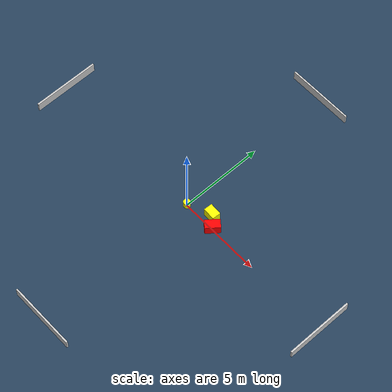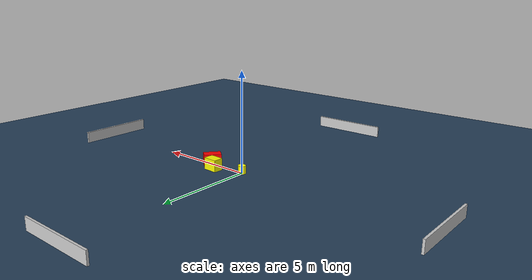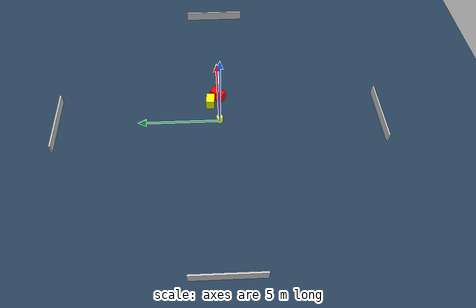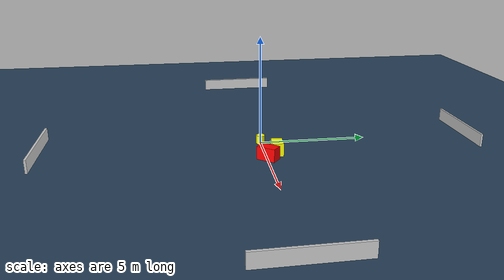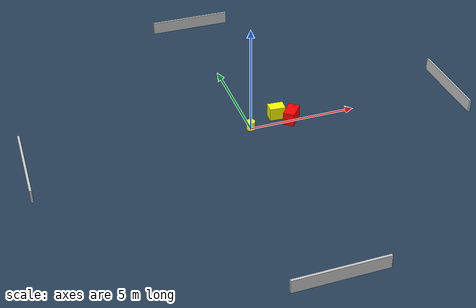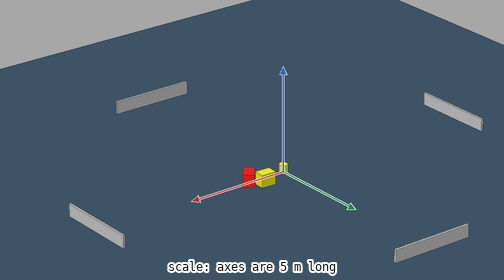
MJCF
<?xml version="1.0" ?>
<mujoco model="generated_environment">
  <option timestep="0.01" integrator="RK4" cone="elliptic"/>
  <default>
    <geom density="1"/>
  </default>
  <asset>
    <texture builtin="gradient" height="3072" name="skybox" rgb1="0.3 0.5 0.7" rgb2="0 0 0" type="skybox" width="512"/>
    <texture builtin="checker" height="300" name="groundplane" rgb1="0.2 0.3 0.4" rgb2="0.1 0.2 0.3" type="2d" width="300"/>
    <material name="groundplane" reflectance="0.2" texrepeat="5 5" texture="groundplane"/>
  </asset>
  <worldbody>
    <light dir="0 0 -1" directional="true" pos="0 0 1.5"/>
    <geom condim="3" friction="0.5 0.005 0.001" material="groundplane" name="floor" pos="0 0 0" size="0 0 0.05" type="plane"/>
    <body name="walls">
      <geom name="wall_1" condim="4" pos="-10.0 0.0 0.3" rgba="0.800000011920929 0.800000011920929 0.800000011920929 1.0" size="0.05 2.0 0.3" type="box"/>
      <geom name="wall_2" condim="4" pos="10.0 0.0 0.3" rgba="0.800000011920929 0.800000011920929 0.800000011920929 1.0" size="0.05 2.0 0.3" type="box"/>
      <geom name="wall_3" condim="4" pos="0.0 -10.0 0.3" rgba="0.800000011920929 0.800000011920929 0.800000011920929 1.0" size="2.0 0.05 0.3" type="box"/>
      <geom name="wall_4" condim="4" pos="0.0 10.0 0.3" rgba="0.800000011920929 0.800000011920929 0.800000011920929 1.0" size="2.0 0.05 0.3" type="box"/>
    </body>
    <body name="robot">
      <joint name="joint_x" type="slide" pos="0 0 0" axis="1 0 0"/>
      <joint name="joint_y" type="slide" pos="0 0 0" axis="0 1 0"/>
      <geom name="robot" type="cylinder" pos="0.0 0.0 0.2" size="0.2 0.2 0.0" mass="5.0" friction="1.0 0.005 0.0001" condim="4" rgba="1.0 1.0 0.0 1.0"/>
    </body>
    <body name="obstacle_1_movable">
      <geom name="obstacle_1_movable" condim="4" pos="1.4111018990058866 0.528502432310627 0.3" euler="0 0 86.78851284175796" friction="0.0 0.005 0.001" rgba="1.0 1.0 0.0 1.0" size="0.2542827275779582 0.36415217688438506 0.3" type="box" mass="0.1"/>
      <joint type="free"/>
    </body>
    <body name="obstacle_2_static">
      <geom name="obstacle_2_static" condim="4" pos="1.9637076717241628 0.03558667939622726 0.3" euler="0 0 51.470010408071026" friction="0.0 0.005 0.001" rgba="1.0 0.0 0.0 1.0" size="0.4365655561195152 0.25744323339172964 0.3" type="box"/>
    </body>
  </worldbody>
  <actuator>
    <motor name="actuator_x" joint="joint_x" gear="1" ctrlrange="-1 1"/>
    <motor name="actuator_y" joint="joint_y" gear="1" ctrlrange="-1 1"/>
  </actuator>
</mujoco>
